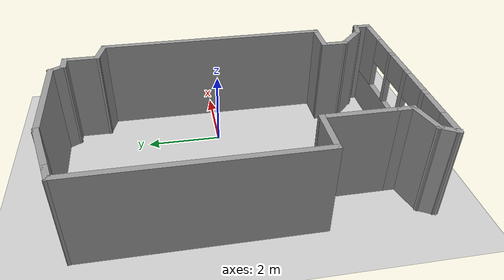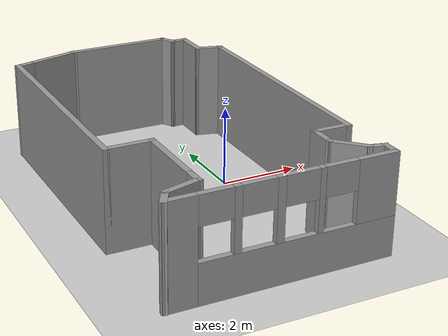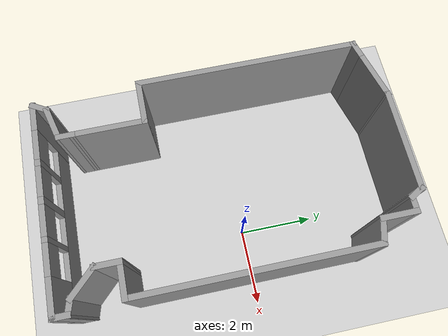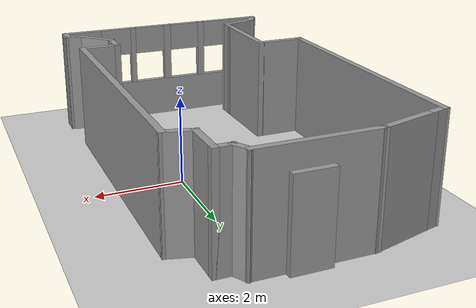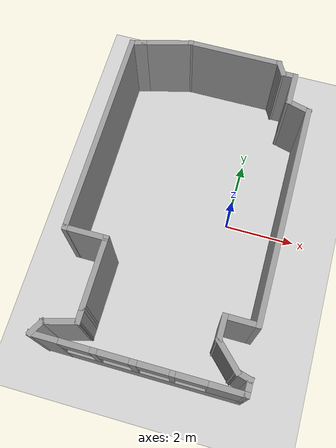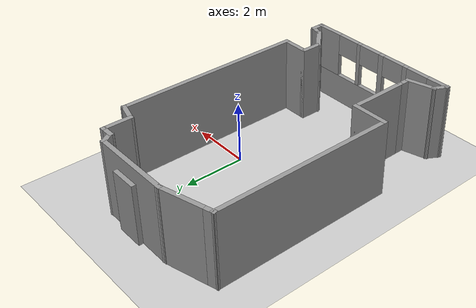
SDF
<?xml version="1.0" ?>
<sdf version="1.5">
  <world name="default">
    <include>
      <uri>model://ground_plane</uri>
    </include>
    <include>
      <uri>model://sun</uri>
    </include>
    <include>
      <uri>model://office_room</uri>
    </include>

  </world>
</sdf>

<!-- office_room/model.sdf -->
<sdf version='1.6'>
  <model name='office_room'>
    <pose frame=''>-1.22922 -0.237971 0 0 -0 0</pose>
    <link name='Door_0'>
      <collision name='Door_0_Collision'>
        <geometry>
          <box>
            <size>0.9 0.17 2</size>
          </box>
        </geometry>
        <pose frame=''>0 0 1 0 -0 0</pose>
      </collision>
      <visual name='Door_0_Visual'>
        <pose frame=''>0 0 1 0 -0 0</pose>
        <geometry>
          <box>
            <size>0.9 0.17 2</size>
          </box>
        </geometry>
        <material>
          <script>
            <uri>file://media/materials/scripts/gazebo.material</uri>
            <name>Gazebo/Grey</name>
          </script>
        </material>
      </visual>
      <pose frame=''>0.379394 4.6584 0 0 -0 0</pose>
    </link>
    <link name='Wall_0'>
      <pose frame=''>0.042872 -4.52511 0 0 -0 0</pose>
      <visual name='Wall_0_Visual_0'>
        <pose frame=''>-2.36048 0 1.25 0 -0 0</pose>
        <geometry>
          <box>
            <size>0.779041 0.15 2.5</size>
          </box>
        </geometry>
        <material>
          <script>
            <uri>file://media/materials/scripts/gazebo.material</uri>
            <name>Gazebo/Grey</name>
          </script>
          <ambient>1 1 1 1</ambient>
        </material>
        <meta>
          <layer>0</layer>
        </meta>
      </visual>
      <collision name='Wall_0_Collision_0'>
        <geometry>
          <box>
            <size>0.779041 0.15 2.5</size>
          </box>
        </geometry>
        <pose frame=''>-2.36048 0 1.25 0 -0 0</pose>
      </collision>
      <visual name='Wall_0_Visual_1'>
        <pose frame=''>0.389521 0 0.5 0 -0 0</pose>
        <geometry>
          <box>
            <size>4.72096 0.15 1</size>
          </box>
        </geometry>
        <material>
          <script>
            <uri>file://media/materials/scripts/gazebo.material</uri>
            <name>Gazebo/Grey</name>
          </script>
          <ambient>1 1 1 1</ambient>
        </material>
        <meta>
          <layer>0</layer>
        </meta>
      </visual>
      <collision name='Wall_0_Collision_1'>
        <geometry>
          <box>
            <size>4.72096 0.15 1</size>
          </box>
        </geometry>
        <pose frame=''>0.389521 0 0.5 0 -0 0</pose>
      </collision>
      <visual name='Wall_0_Visual_2'>
        <pose frame=''>-1.08246 0 1.75 0 -0 0</pose>
        <geometry>
          <box>
            <size>0.177002 0.15 1.5</size>
          </box>
        </geometry>
        <material>
          <script>
            <uri>file://media/materials/scripts/gazebo.material</uri>
            <name>Gazebo/Grey</name>
          </script>
          <ambient>1 1 1 1</ambient>
        </material>
        <meta>
          <layer>0</layer>
        </meta>
      </visual>
      <collision name='Wall_0_Collision_2'>
        <geometry>
          <box>
            <size>0.177002 0.15 1.5</size>
          </box>
        </geometry>
        <pose frame=''>-1.08246 0 1.75 0 -0 0</pose>
      </collision>
      <visual name='Wall_0_Visual_3'>
        <pose frame=''>-0.09696 0 1.75 0 -0 0</pose>
        <geometry>
          <box>
            <size>0.193992 0.15 1.5</size>
          </box>
        </geometry>
        <material>
          <script>
            <uri>file://media/materials/scripts/gazebo.material</uri>
            <name>Gazebo/Grey</name>
          </script>
          <ambient>1 1 1 1</ambient>
        </material>
        <meta>
          <layer>0</layer>
        </meta>
      </visual>
      <collision name='Wall_0_Collision_3'>
        <geometry>
          <box>
            <size>0.193992 0.15 1.5</size>
          </box>
        </geometry>
        <pose frame=''>-0.09696 0 1.75 0 -0 0</pose>
      </collision>
      <visual name='Wall_0_Visual_4'>
        <pose frame=''>0.871536 0 1.75 0 -0 0</pose>
        <geometry>
          <box>
            <size>0.143 0.15 1.5</size>
          </box>
        </geometry>
        <material>
          <script>
            <uri>file://media/materials/scripts/gazebo.material</uri>
            <name>Gazebo/Grey</name>
          </script>
          <ambient>1 1 1 1</ambient>
        </material>
        <meta>
          <layer>0</layer>
        </meta>
      </visual>
      <collision name='Wall_0_Collision_4'>
        <geometry>
          <box>
            <size>0.143 0.15 1.5</size>
          </box>
        </geometry>
        <pose frame=''>0.871536 0 1.75 0 -0 0</pose>
      </collision>
      <visual name='Wall_0_Visual_5'>
        <pose frame=''>2.24652 0 1.75 0 -0 0</pose>
        <geometry>
          <box>
            <size>1.00696 0.15 1.5</size>
          </box>
        </geometry>
        <material>
          <script>
            <uri>file://media/materials/scripts/gazebo.material</uri>
            <name>Gazebo/Grey</name>
          </script>
          <ambient>1 1 1 1</ambient>
        </material>
        <meta>
          <layer>0</layer>
        </meta>
      </visual>
      <collision name='Wall_0_Collision_5'>
        <geometry>
          <box>
            <size>1.00696 0.15 1.5</size>
          </box>
        </geometry>
        <pose frame=''>2.24652 0 1.75 0 -0 0</pose>
      </collision>
      <visual name='Wall_0_Visual_6'>
        <pose frame=''>-1.57096 0 2.15 0 -0 0</pose>
        <geometry>
          <box>
            <size>0.8 0.15 0.7</size>
          </box>
        </geometry>
        <material>
          <script>
            <uri>file://media/materials/scripts/gazebo.material</uri>
            <name>Gazebo/Grey</name>
          </script>
          <ambient>1 1 1 1</ambient>
        </material>
        <meta>
          <layer>0</layer>
        </meta>
      </visual>
      <collision name='Wall_0_Collision_6'>
        <geometry>
          <box>
            <size>0.8 0.15 0.7</size>
          </box>
        </geometry>
        <pose frame=''>-1.57096 0 2.15 0 -0 0</pose>
      </collision>
      <visual name='Wall_0_Visual_7'>
        <pose frame=''>-0.593956 0 2.15 0 -0 0</pose>
        <geometry>
          <box>
            <size>0.8 0.15 0.7</size>
          </box>
        </geometry>
        <material>
          <script>
            <uri>file://media/materials/scripts/gazebo.material</uri>
            <name>Gazebo/Grey</name>
          </script>
          <ambient>1 1 1 1</ambient>
        </material>
        <meta>
          <layer>0</layer>
        </meta>
      </visual>
      <collision name='Wall_0_Collision_7'>
        <geometry>
          <box>
            <size>0.8 0.15 0.7</size>
          </box>
        </geometry>
        <pose frame=''>-0.593956 0 2.15 0 -0 0</pose>
      </collision>
      <visual name='Wall_0_Visual_8'>
        <pose frame=''>0.400036 0 2.15 0 -0 0</pose>
        <geometry>
          <box>
            <size>0.8 0.15 0.7</size>
          </box>
        </geometry>
        <material>
          <script>
            <uri>file://media/materials/scripts/gazebo.material</uri>
            <name>Gazebo/Grey</name>
          </script>
          <ambient>1 1 1 1</ambient>
        </material>
        <meta>
          <layer>0</layer>
        </meta>
      </visual>
      <collision name='Wall_0_Collision_8'>
        <geometry>
          <box>
            <size>0.8 0.15 0.7</size>
          </box>
        </geometry>
        <pose frame=''>0.400036 0 2.15 0 -0 0</pose>
      </collision>
      <visual name='Wall_0_Visual_9'>
        <pose frame=''>1.34304 0 2.15 0 -0 0</pose>
        <geometry>
          <box>
            <size>0.8 0.15 0.7</size>
          </box>
        </geometry>
        <material>
          <script>
            <uri>file://media/materials/scripts/gazebo.material</uri>
            <name>Gazebo/Grey</name>
          </script>
          <ambient>1 1 1 1</ambient>
        </material>
        <meta>
          <layer>0</layer>
        </meta>
      </visual>
      <collision name='Wall_0_Collision_9'>
        <geometry>
          <box>
            <size>0.8 0.15 0.7</size>
          </box>
        </geometry>
        <pose frame=''>1.34304 0 2.15 0 -0 0</pose>
      </collision>
    </link>
    <link name='Wall_1'>
      <collision name='Wall_1_Collision'>
        <geometry>
          <box>
            <size>0.5 0.15 2.5</size>
          </box>
        </geometry>
        <pose frame=''>0 0 1.25 0 -0 0</pose>
      </collision>
      <visual name='Wall_1_Visual'>
        <pose frame=''>0 0 1.25 0 -0 0</pose>
        <geometry>
          <box>
            <size>0.5 0.15 2.5</size>
          </box>
        </geometry>
        <material>
          <script>
            <uri>file://media/materials/scripts/gazebo.material</uri>
            <name>Gazebo/Grey</name>
          </script>
          <ambient>1 1 1 1</ambient>
        </material>
        <meta>
          <layer>0</layer>
        </meta>
      </visual>
      <pose frame=''>2.71787 -4.35011 0 0 -0 1.5708</pose>
    </link>
    <link name='Wall_10'>
      <collision name='Wall_10_Collision'>
        <geometry>
          <box>
            <size>0.5 0.15 2.5</size>
          </box>
        </geometry>
        <pose frame=''>0 0 1.25 0 -0 0</pose>
      </collision>
      <visual name='Wall_10_Visual'>
        <pose frame=''>0 0 1.25 0 -0 0</pose>
        <geometry>
          <box>
            <size>0.5 0.15 2.5</size>
          </box>
        </geometry>
        <material>
          <script>
            <uri>file://media/materials/scripts/gazebo.material</uri>
            <name>Gazebo/Grey</name>
          </script>
          <ambient>1 1 1 1</ambient>
        </material>
        <meta>
          <layer>0</layer>
        </meta>
      </visual>
      <pose frame=''>1.6117 4.37336 0 0 -0 2.0944</pose>
    </link>
    <link name='Wall_11'>
      <collision name='Wall_11_Collision'>
        <geometry>
          <box>
            <size>2.75 0.15 2.5</size>
          </box>
        </geometry>
        <pose frame=''>0 0 1.25 0 -0 0</pose>
      </collision>
      <visual name='Wall_11_Visual'>
        <pose frame=''>0 0 1.25 0 -0 0</pose>
        <geometry>
          <box>
            <size>2.75 0.15 2.5</size>
          </box>
        </geometry>
        <material>
          <script>
            <uri>file://media/materials/scripts/gazebo.material</uri>
            <name>Gazebo/Grey</name>
          </script>
          <ambient>1 1 1 1</ambient>
        </material>
        <meta>
          <layer>0</layer>
        </meta>
      </visual>
      <pose frame=''>0.224202 4.52492 0 0 -0 3.14159</pose>
    </link>
    <link name='Wall_12'>
      <collision name='Wall_12_Collision'>
        <geometry>
          <box>
            <size>0.15 0.15 2.5</size>
          </box>
        </geometry>
        <pose frame=''>0 0 1.25 0 -0 0</pose>
      </collision>
      <visual name='Wall_12_Visual'>
        <pose frame=''>0 0 1.25 0 -0 0</pose>
        <geometry>
          <box>
            <size>0.15 0.15 2.5</size>
          </box>
        </geometry>
        <material>
          <script>
            <uri>file://media/materials/scripts/gazebo.material</uri>
            <name>Gazebo/Grey</name>
          </script>
          <ambient>1 1 1 1</ambient>
        </material>
        <meta>
          <layer>0</layer>
        </meta>
      </visual>
      <pose frame=''>-1.0758 4.52492 0 0 -0 0</pose>
    </link>
    <link name='Wall_13'>
      <collision name='Wall_13_Collision'>
        <geometry>
          <box>
            <size>1.5 0.15 2.5</size>
          </box>
        </geometry>
        <pose frame=''>0 0 1.25 0 -0 0</pose>
      </collision>
      <visual name='Wall_13_Visual'>
        <pose frame=''>0 0 1.25 0 -0 0</pose>
        <geometry>
          <box>
            <size>1.5 0.15 2.5</size>
          </box>
        </geometry>
        <material>
          <script>
            <uri>file://media/materials/scripts/gazebo.material</uri>
            <name>Gazebo/Grey</name>
          </script>
          <ambient>1 1 1 1</ambient>
        </material>
        <meta>
          <layer>0</layer>
        </meta>
      </visual>
      <pose frame=''>-1.7278 4.35022 0 0 -0 -2.87979</pose>
    </link>
    <link name='Wall_14'>
      <collision name='Wall_14_Collision'>
        <geometry>
          <box>
            <size>0.5 0.15 2.5</size>
          </box>
        </geometry>
        <pose frame=''>0 0 1.25 0 -0 0</pose>
      </collision>
      <visual name='Wall_14_Visual'>
        <pose frame=''>0 0 1.25 0 -0 0</pose>
        <geometry>
          <box>
            <size>0.5 0.15 2.5</size>
          </box>
        </geometry>
        <material>
          <script>
            <uri>file://media/materials/scripts/gazebo.material</uri>
            <name>Gazebo/Grey</name>
          </script>
          <ambient>1 1 1 1</ambient>
        </material>
        <meta>
          <layer>0</layer>
        </meta>
      </visual>
      <pose frame=''>-2.54883 4.13022 0 0 -0 -2.87979</pose>
    </link>
    <link name='Wall_15'>
      <collision name='Wall_15_Collision'>
        <geometry>
          <box>
            <size>6 0.15 2.5</size>
          </box>
        </geometry>
        <pose frame=''>0 0 1.25 0 -0 0</pose>
      </collision>
      <visual name='Wall_15_Visual'>
        <pose frame=''>0 0 1.25 0 -0 0</pose>
        <geometry>
          <box>
            <size>6 0.15 2.5</size>
          </box>
        </geometry>
        <material>
          <script>
            <uri>file://media/materials/scripts/gazebo.material</uri>
            <name>Gazebo/Grey</name>
          </script>
          <ambient>1 1 1 1</ambient>
        </material>
        <meta>
          <layer>0</layer>
        </meta>
      </visual>
      <pose frame=''>-2.71787 1.15993 0 0 -0 -1.5708</pose>
    </link>
    <link name='Wall_16'>
      <collision name='Wall_16_Collision'>
        <geometry>
          <box>
            <size>1.25 0.15 2.5</size>
          </box>
        </geometry>
        <pose frame=''>0 0 1.25 0 -0 0</pose>
      </collision>
      <visual name='Wall_16_Visual'>
        <pose frame=''>0 0 1.25 0 -0 0</pose>
        <geometry>
          <box>
            <size>1.25 0.15 2.5</size>
          </box>
        </geometry>
        <material>
          <script>
            <uri>file://media/materials/scripts/gazebo.material</uri>
            <name>Gazebo/Grey</name>
          </script>
          <ambient>1 1 1 1</ambient>
        </material>
        <meta>
          <layer>0</layer>
        </meta>
      </visual>
      <pose frame=''>-2.16783 -1.76505 0 0 -0 4.1e-05</pose>
    </link>
    <link name='Wall_17'>
      <collision name='Wall_17_Collision'>
        <geometry>
          <box>
            <size>2 0.15 2.5</size>
          </box>
        </geometry>
        <pose frame=''>0 0 1.25 0 -0 0</pose>
      </collision>
      <visual name='Wall_17_Visual'>
        <pose frame=''>0 0 1.25 0 -0 0</pose>
        <geometry>
          <box>
            <size>2 0.15 2.5</size>
          </box>
        </geometry>
        <material>
          <script>
            <uri>file://media/materials/scripts/gazebo.material</uri>
            <name>Gazebo/Grey</name>
          </script>
          <ambient>1 1 1 1</ambient>
        </material>
        <meta>
          <layer>0</layer>
        </meta>
      </visual>
      <pose frame=''>-1.61778 -2.69003 0 0 -0 -1.5708</pose>
    </link>
    <link name='Wall_18'>
      <collision name='Wall_18_Collision'>
        <geometry>
          <box>
            <size>0.5 0.15 2.5</size>
          </box>
        </geometry>
        <pose frame=''>0 0 1.25 0 -0 0</pose>
      </collision>
      <visual name='Wall_18_Visual'>
        <pose frame=''>0 0 1.25 0 -0 0</pose>
        <geometry>
          <box>
            <size>0.5 0.15 2.5</size>
          </box>
        </geometry>
        <material>
          <script>
            <uri>file://media/materials/scripts/gazebo.material</uri>
            <name>Gazebo/Grey</name>
          </script>
          <ambient>1 1 1 1</ambient>
        </material>
        <meta>
          <layer>0</layer>
        </meta>
      </visual>
      <pose frame=''>-1.61783 -3.79005 0 0 -0 -1.57105</pose>
    </link>
    <link name='Wall_19'>
      <collision name='Wall_19_Collision'>
        <geometry>
          <box>
            <size>1 0.15 2.5</size>
          </box>
        </geometry>
        <pose frame=''>0 0 1.25 0 -0 0</pose>
      </collision>
      <visual name='Wall_19_Visual'>
        <pose frame=''>0 0 1.25 0 -0 0</pose>
        <geometry>
          <box>
            <size>1 0.15 2.5</size>
          </box>
        </geometry>
        <material>
          <script>
            <uri>file://media/materials/scripts/gazebo.material</uri>
            <name>Gazebo/Grey</name>
          </script>
          <ambient>1 1 1 1</ambient>
        </material>
        <meta>
          <layer>0</layer>
        </meta>
      </visual>
      <pose frame=''>-2.02839 -4.07507 0 0 -0 -2.87979</pose>
    </link>
    <link name='Wall_2'>
      <collision name='Wall_2_Collision'>
        <geometry>
          <box>
            <size>0.5 0.15 2.5</size>
          </box>
        </geometry>
        <pose frame=''>0 0 1.25 0 -0 0</pose>
      </collision>
      <visual name='Wall_2_Visual'>
        <pose frame=''>0 0 1.25 0 -0 0</pose>
        <geometry>
          <box>
            <size>0.5 0.15 2.5</size>
          </box>
        </geometry>
        <material>
          <script>
            <uri>file://media/materials/scripts/gazebo.material</uri>
            <name>Gazebo/Grey</name>
          </script>
          <ambient>1 1 1 1</ambient>
        </material>
        <meta>
          <layer>0</layer>
        </meta>
      </visual>
      <pose frame=''>2.54883 -4.12982 0 0 -0 2.87979</pose>
    </link>
    <link name='Wall_20'>
      <collision name='Wall_20_Collision'>
        <geometry>
          <box>
            <size>0.541101 0.15 2.5</size>
          </box>
        </geometry>
        <pose frame=''>0 0 1.25 0 -0 0</pose>
      </collision>
      <visual name='Wall_20_Visual'>
        <pose frame=''>0 0 1.25 0 -0 0</pose>
        <geometry>
          <box>
            <size>0.541101 0.15 2.5</size>
          </box>
        </geometry>
        <material>
          <script>
            <uri>file://media/materials/scripts/gazebo.material</uri>
            <name>Gazebo/Grey</name>
          </script>
          <ambient>1 1 1 1</ambient>
        </material>
        <meta>
          <layer>0</layer>
        </meta>
      </visual>
      <pose frame=''>-2.53552 -4.35509 0 0 -0 -2.08752</pose>
    </link>
    <link name='Wall_3'>
      <collision name='Wall_3_Collision'>
        <geometry>
          <box>
            <size>1 0.15 2.5</size>
          </box>
        </geometry>
        <pose frame=''>0 0 1.25 0 -0 0</pose>
      </collision>
      <visual name='Wall_3_Visual'>
        <pose frame=''>0 0 1.25 0 -0 0</pose>
        <geometry>
          <box>
            <size>1 0.15 2.5</size>
          </box>
        </geometry>
        <material>
          <script>
            <uri>file://media/materials/scripts/gazebo.material</uri>
            <name>Gazebo/Grey</name>
          </script>
          <ambient>1 1 1 1</ambient>
        </material>
        <meta>
          <layer>0</layer>
        </meta>
      </visual>
      <pose frame=''>2.07928 -3.784 0 0 -0 2.35619</pose>
    </link>
    <link name='Wall_4'>
      <collision name='Wall_4_Collision'>
        <geometry>
          <box>
            <size>0.75 0.15 2.5</size>
          </box>
        </geometry>
        <pose frame=''>0 0 1.25 0 -0 0</pose>
      </collision>
      <visual name='Wall_4_Visual'>
        <pose frame=''>0 0 1.25 0 -0 0</pose>
        <geometry>
          <box>
            <size>0.75 0.15 2.5</size>
          </box>
        </geometry>
        <material>
          <script>
            <uri>file://media/materials/scripts/gazebo.material</uri>
            <name>Gazebo/Grey</name>
          </script>
          <ambient>1 1 1 1</ambient>
        </material>
        <meta>
          <layer>0</layer>
        </meta>
      </visual>
      <pose frame=''>1.77876 -3.18348 0 0 -0 1.5708</pose>
    </link>
    <link name='Wall_5'>
      <collision name='Wall_5_Collision'>
        <geometry>
          <box>
            <size>1 0.15 2.5</size>
          </box>
        </geometry>
        <pose frame=''>0 0 1.25 0 -0 0</pose>
      </collision>
      <visual name='Wall_5_Visual'>
        <pose frame=''>0 0 1.25 0 -0 0</pose>
        <geometry>
          <box>
            <size>1 0.15 2.5</size>
          </box>
        </geometry>
        <material>
          <script>
            <uri>file://media/materials/scripts/gazebo.material</uri>
            <name>Gazebo/Grey</name>
          </script>
          <ambient>1 1 1 1</ambient>
        </material>
        <meta>
          <layer>0</layer>
        </meta>
      </visual>
      <pose frame=''>2.20376 -2.88348 0 0 -0 0</pose>
    </link>
    <link name='Wall_6'>
      <collision name='Wall_6_Collision'>
        <geometry>
          <box>
            <size>6.25 0.15 2.5</size>
          </box>
        </geometry>
        <pose frame=''>0 0 1.25 0 -0 0</pose>
      </collision>
      <visual name='Wall_6_Visual'>
        <pose frame=''>0 0 1.25 0 -0 0</pose>
        <geometry>
          <box>
            <size>6.25 0.15 2.5</size>
          </box>
        </geometry>
        <material>
          <script>
            <uri>file://media/materials/scripts/gazebo.material</uri>
            <name>Gazebo/Grey</name>
          </script>
          <ambient>1 1 1 1</ambient>
        </material>
        <meta>
          <layer>0</layer>
        </meta>
      </visual>
      <pose frame=''>2.62876 0.166518 0 0 -0 1.5708</pose>
    </link>
    <link name='Wall_7'>
      <collision name='Wall_7_Collision'>
        <geometry>
          <box>
            <size>0.75 0.15 2.5</size>
          </box>
        </geometry>
        <pose frame=''>0 0 1.25 0 -0 0</pose>
      </collision>
      <visual name='Wall_7_Visual'>
        <pose frame=''>0 0 1.25 0 -0 0</pose>
        <geometry>
          <box>
            <size>0.75 0.15 2.5</size>
          </box>
        </geometry>
        <material>
          <script>
            <uri>file://media/materials/scripts/gazebo.material</uri>
            <name>Gazebo/Grey</name>
          </script>
          <ambient>1 1 1 1</ambient>
        </material>
        <meta>
          <layer>0</layer>
        </meta>
      </visual>
      <pose frame=''>2.33898 3.29416 0 0 -0 2.87979</pose>
    </link>
    <link name='Wall_8'>
      <collision name='Wall_8_Collision'>
        <geometry>
          <box>
            <size>1 0.15 2.5</size>
          </box>
        </geometry>
        <pose frame=''>0 0 1.25 0 -0 0</pose>
      </collision>
      <visual name='Wall_8_Visual'>
        <pose frame=''>0 0 1.25 0 -0 0</pose>
        <geometry>
          <box>
            <size>1 0.15 2.5</size>
          </box>
        </geometry>
        <material>
          <script>
            <uri>file://media/materials/scripts/gazebo.material</uri>
            <name>Gazebo/Grey</name>
          </script>
          <ambient>1 1 1 1</ambient>
        </material>
        <meta>
          <layer>0</layer>
        </meta>
      </visual>
      <pose frame=''>2.0492 3.79681 0 0 -0 1.5708</pose>
    </link>
    <link name='Wall_9'>
      <collision name='Wall_9_Collision'>
        <geometry>
          <box>
            <size>0.5 0.15 2.5</size>
          </box>
        </geometry>
        <pose frame=''>0 0 1.25 0 -0 0</pose>
      </collision>
      <visual name='Wall_9_Visual'>
        <pose frame=''>0 0 1.25 0 -0 0</pose>
        <geometry>
          <box>
            <size>0.5 0.15 2.5</size>
          </box>
        </geometry>
        <material>
          <script>
            <uri>file://media/materials/scripts/gazebo.material</uri>
            <name>Gazebo/Grey</name>
          </script>
          <ambient>1 1 1 1</ambient>
        </material>
        <meta>
          <layer>0</layer>
        </meta>
      </visual>
      <pose frame=''>1.8742 4.22181 0 0 -0 3.14159</pose>
    </link>
    <static>1</static>
  </model>
</sdf>
